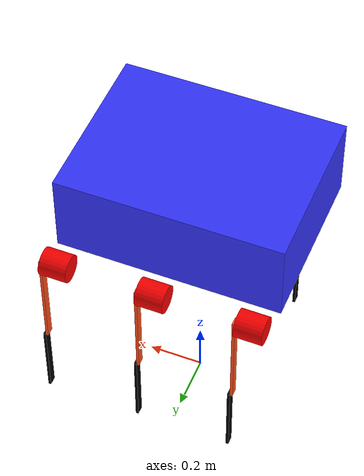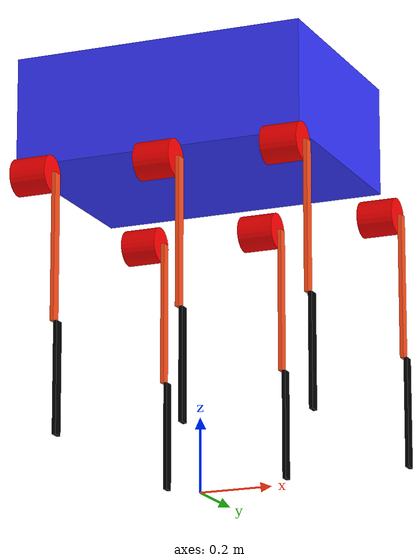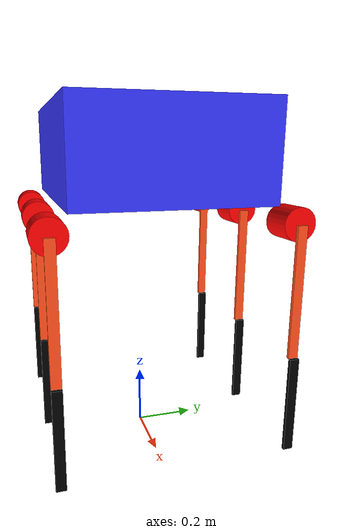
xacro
<?xml version="1.0"?>
<robot xmlns:xacro="http://www.ros.org/wiki/xacro"  name="robot">

    <!--xacro:arg name="use_ros2_control" default="true"/-->
    <xacro:arg name="sim_mode" default="false"/>
     <!-- Import Gazebo related stuff -->
    <xacro:include filename="gazebo_control.xacro"/>
     <!-- Import Leg geometry Macro -->
    <xacro:include filename="robot_leg.xacro"/>
     <!-- Import Leg control Macro -->
    <xacro:include filename="ros2_control_leg.xacro"/>
     <!-- Import ROS control -->
    <xacro:include filename="ros2_control_silver.xacro"/>
     <!-- Import Inertia Macros -->
    <xacro:include filename="inertial_macros.xacro"/>
    <!-- Import Constants -->
    <xacro:include filename="silver_constants.xacro"/>
    <!-- Import Rviz colors -->
    <xacro:include filename="colors_rviz.xacro"/>

    <!-- WORLD LINK -->

    <link name = "world"></link>

    <!-- BODY JOINT AND LINK -->

    <joint name="body_joint" type="fixed">
        <origin xyz="0.0 0.0 ${body_link_height}" rpy="0.0 0.0 0.0"/>
        <parent link="world"/>
        <child link="body_link"/>
    </joint>

    <link name="body_link">
        <visual>
            <origin xyz="0.0 0.0 0.0" rpy="0.0 0.0 0.0"/>
            <geometry>
                <box size="${body_link_x_dim} ${body_link_y_dim} ${body_link_z_dim}"/>
            </geometry>
            <material name="blue"/>
        </visual>
        <collision>
            <origin xyz="0.0 0.0 0.0" rpy="0.0 0.0 0.0"/>
            <geometry>
                <box size="${body_link_x_dim} ${body_link_y_dim} ${body_link_z_dim}"/>
            </geometry>
        </collision>
        <xacro:inertial_box mass="${body_link_mass}" x="${body_link_x_dim}" y ="${body_link_y_dim}" z="${body_link_z_dim}">
            <origin xyz="0.0 0 0.0"/>
        </xacro:inertial_box>
    </link>

    <xacro:leg suffix="0" reflect="1" Ox="0.35" Oy="0.3" Oz="-0.15"/>
    <xacro:leg suffix="1" reflect="1" Ox="0.0" Oy="0.3" Oz="-0.15"/>
    <xacro:leg suffix="2" reflect="1" Ox="-0.35" Oy="0.3" Oz="-0.15"/>
    <xacro:leg suffix="3" reflect="-1" Ox="0.35" Oy="-0.3" Oz="-0.15"/>
    <xacro:leg suffix="4" reflect="-1" Ox="0.0" Oy="-0.3" Oz="-0.15"/>
    <xacro:leg suffix="5" reflect="-1" Ox="-0.35" Oy="-0.3" Oz="-0.15"/>

</robot>

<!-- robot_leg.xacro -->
<robot xmlns:xacro="http://www.ros.org/wiki/xacro">

    <xacro:macro name="leg" params="suffix reflect Ox Oy Oz">

        <!-- COXA JOINT AND LINK-->

        <joint name="coxa_joint_${suffix}" type="revolute">
                <origin xyz="${Ox} ${Oy} ${Oz}" rpy="0.0 0.0 0.0"/>
                <parent link="body_link"/>
                <child link="coxa_link_${suffix}"/>
                <limit effort="100" velocity="100.0" lower="-3.14" upper="3.14" />
                <axis xyz="0 0 1"/>
                <dynamics damping="0.7"/>
        </joint>

        <link name="coxa_link_${suffix}">
            <visual>
                <origin xyz="${coxa_link_Ox} ${reflect*coxa_link_Oy} ${coxa_link_Oz}" rpy="0.0 ${coxa_link_Ry} 0.0"/>
                <geometry>
                    <cylinder length="${coxa_link_length}" radius="${coxa_link_radius}"/>
                </geometry>
                <material name="red"/>
            </visual>
            <collision>
                <origin xyz="${coxa_link_Ox} ${coxa_link_Oy} ${coxa_link_Oz}" rpy="0.0 ${coxa_link_Ry} 0.0"/>
                <geometry>
                    <cylinder length="${coxa_link_length}" radius="${coxa_link_radius}"/>
                </geometry>
            </collision>
            <xacro:inertial_cylinder mass="${coxa_link_mass}" length="${coxa_link_length}" radius="${coxa_link_radius}">
                <origin xyz="${coxa_link_Ox} ${coxa_link_Oy} ${coxa_link_Oz}" rpy="0.0 ${coxa_link_Ry} 0.0"/>
            </xacro:inertial_cylinder>
        </link>

        <!-- FEMUR JOINT AND LINK-->

        <joint name="femur_joint_${suffix}" type="revolute">
            <origin xyz="${femur_joint_Ox} ${reflect*femur_joint_Oy} ${femur_joint_Oz}" rpy="0.0 ${femur_joint_Ry} 0.0"/>
            <parent link="coxa_link_${suffix}"/>
            <child link="femur_link_${suffix}"/>
            <limit effort="100" velocity="100.0" lower="-3.14" upper="3.14" />
            <axis xyz="0 0 ${reflect}"/>
            <dynamics damping="0.7"/>
        </joint>

        <link name="femur_link_${suffix}">
            <visual>
                <origin xyz="${femur_link_Ox} 0.0 0.0" rpy="0.0 0.0 0.0"/>
                <geometry>
                    <box size="${femur_link_dx} ${femur_link_dy} ${femur_link_dz}"/>
                </geometry>
                <material name="orange"/>
            </visual>
            <collision>
                <origin xyz="${femur_link_Ox} 0.0 0.0" rpy="0.0 0.0 0.0"/>
                <geometry>
                    <box size="${femur_link_dx} ${femur_link_dy} ${femur_link_dz}"/>
                </geometry>
            </collision>
            <xacro:inertial_box mass="${femur_link_mass}" x="${femur_link_dx}" y="${femur_link_dy}" z='${femur_link_dz}'>
                <origin xyz="${femur_link_Ox} 0.0 0.0" rpy="0.0 0.0 0.0"/>
            </xacro:inertial_box>
        </link>

        <!-- TIBIA JOINT AND LINK -->
        <joint name="tibia_joint_${suffix}" type="revolute">
            <origin xyz="${tibia_joint_Ox} ${tibia_joint_Oy} ${tibia_joint_Oz}" rpy="0.0 0.0 0.0"/>
            <parent link="femur_link_${suffix}"/>
            <child link="tibia_link_${suffix}"/>
            <limit effort="100" velocity="100.0" lower="-3.14" upper="3.14" />
            <axis xyz="0 0 ${reflect}"/>
            <dynamics damping="0.7"/>
        </joint>

        <link name="tibia_link_${suffix}">
            <visual>
                <origin xyz="${tibia_link_Ox} 0.0 0.0" rpy="0.0 0.0 0.0"/>
                <geometry>
                    <box size="${tibia_link_dx} ${tibia_link_dy} ${tibia_link_dz}"/>
                </geometry>
                <material name="black"/>
            </visual>
            <collision>
                <origin xyz="${tibia_link_Ox} 0.0 0.0" rpy="0.0 0.0 0.0"/>
                <geometry>
                    <box size="${tibia_link_dx} ${tibia_link_dy} ${tibia_link_dz}"/>
                </geometry>
            </collision>
            <xacro:inertial_box mass="${tibia_link_mass}" x="${tibia_link_dx}" y="${tibia_link_dy}" z="${tibia_link_dz}">
                <origin xyz="${tibia_link_Ox} 0.0 0.0" rpy="0.0 0.0 0.0"/>
            </xacro:inertial_box>
        </link>

    </xacro:macro>
</robot>

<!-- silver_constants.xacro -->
<robot xmlns:xacro="http://www.ros.org/wiki/xacro" >

    <!-- Constant parameters -->
    <xacro:property name="body_link_mass" value="2.0" /> <!-- Kg -->
    <xacro:property name="body_link_height" value="1.0" />
    <xacro:property name="body_link_x_dim" value="0.8" />
    <xacro:property name="body_link_y_dim" value="0.6" />
    <xacro:property name="body_link_z_dim" value="0.3" />

    <xacro:property name="coxa_link_mass" value="0.5" /> <!-- Kg -->
    <xacro:property name="coxa_joint_Ox" value="0.0" />
    <xacro:property name="coxa_joint_Oy" value="0.0" />
    <xacro:property name="coxa_joint_Oz" value="0.0" />
    <xacro:property name="coxa_link_Ox" value="0.03" />
    <xacro:property name="coxa_link_Oy" value="0.05" />
    <xacro:property name="coxa_link_Oz" value="-0.05" />
    <xacro:property name="coxa_link_Ry" value="1.57" /> <!-- rad -->
    <xacro:property name="coxa_link_length" value="0.1" />
    <xacro:property name="coxa_link_radius" value="0.05" />

    <xacro:property name="femur_link_mass" value="0.5" /> <!-- Kg -->
    <xacro:property name="femur_joint_Ox" value="0.09" />
    <xacro:property name="femur_joint_Oy" value="0.05" />
    <xacro:property name="femur_joint_Oz" value="-0.05" />
    <xacro:property name="femur_joint_Ry" value="1.57" /> <!-- rad -->
    <xacro:property name="femur_link_Ox" value="0.2" />
    <xacro:property name="femur_link_Oy" value="0.05" />
    <xacro:property name="femur_link_Oz" value="-0.05" />
    <xacro:property name="femur_link_dx" value="0.4" />
    <xacro:property name="femur_link_dy" value="0.03" />
    <xacro:property name="femur_link_dz" value="0.01" />

    <xacro:property name="tibia_link_mass" value="0.5" /> <!-- Kg -->
    <xacro:property name="tibia_joint_Ox" value="0.4" />
    <xacro:property name="tibia_joint_Oy" value="0.0" />
    <xacro:property name="tibia_joint_Oz" value="0.01" />
    <xacro:property name="tibia_link_Ox" value="0.15" />
    <xacro:property name="tibia_link_Oy" value="0.0" />
    <xacro:property name="tibia_link_Oz" value="0.0" />
    <xacro:property name="tibia_link_dx" value="0.3" />
    <xacro:property name="tibia_link_dy" value="0.03" />
    <xacro:property name="tibia_link_dz" value="0.01" />

    <xacro:property name="foot_link_mass" value="0.1" /> <!-- Kg -->
    <xacro:property name="foot_joint_Ox" value="0.3" />
    <xacro:property name="foot_joint_Oy" value="0.0" />
    <xacro:property name="foot_joint_Oz" value="0.0" />
    <xacro:property name="foot_joint_Rz" value="-0.785" /> <!-- rad -->
    <xacro:property name="foot_link_Ox" value="0.01" />
    <xacro:property name="foot_link_Oy" value="0.0" />
    <xacro:property name="foot_link_Oz" value="0.0" />
    <xacro:property name="foot_link_dx" value="0.05" />
    <xacro:property name="foot_link_dy" value="0.01" />
    <xacro:property name="foot_link_dz" value="0.01" />

    <xacro:property name="coxa_offset_0" value="-0.23" /> <!-- rad -->
    <xacro:property name="femur_offset_0" value="-0.10" /> <!-- rad -->
    <xacro:property name="tibia_offset_0" value="1.85" /> <!-- rad -->
    <xacro:property name="coxa_offset_1" value="0.0" /> <!-- rad -->
    <xacro:property name="femur_offset_1" value="0.0" /> <!-- rad -->
    <xacro:property name="tibia_offset_1" value="0.0" /> <!-- rad -->
    <xacro:property name="coxa_offset_2" value="0.0" /> <!-- rad -->
    <xacro:property name="femur_offset_2" value="0.0" /> <!-- rad -->
    <xacro:property name="tibia_offset_2" value="0.0" /> <!-- rad -->
    <xacro:property name="coxa_offset_3" value="0.0" /> <!-- rad -->
    <xacro:property name="femur_offset_3" value="0.0" /> <!-- rad -->
    <xacro:property name="tibia_offset_3" value="0.0" /> <!-- rad -->
    <xacro:property name="coxa_offset_4" value="0.0" /> <!-- rad -->
    <xacro:property name="femur_offset_4" value="0.0" /> <!-- rad -->
    <xacro:property name="tibia_offset_4" value="0.0" /> <!-- rad -->
    <xacro:property name="coxa_offset_5" value="0.0" /> <!-- rad -->
    <xacro:property name="femur_offset_5" value="0.0" /> <!-- rad -->
    <xacro:property name="tibia_offset_5" value="0.0" /> <!-- rad -->

    <xacro:property name="coxa_reduction_0" value="1.0" /> <!-- rad -->
    <xacro:property name="femur_reduction_0" value="-1.0" /> <!-- rad -->
    <xacro:property name="tibia_reduction_0" value="1.0" /> <!-- rad -->
    <xacro:property name="coxa_reduction_1" value="1.0" /> <!-- rad -->
    <xacro:property name="femur_reduction_1" value="1.0" /> <!-- rad -->
    <xacro:property name="tibia_reduction_1" value="1.0" /> <!-- rad -->
    <xacro:property name="coxa_reduction_2" value="1.0" /> <!-- rad -->
    <xacro:property name="femur_reduction_2" value="1.0" /> <!-- rad -->
    <xacro:property name="tibia_reduction_2" value="1.0" /> <!-- rad -->
    <xacro:property name="coxa_reduction_3" value="1.0" /> <!-- rad -->
    <xacro:property name="femur_reduction_3" value="1.0" /> <!-- rad -->
    <xacro:property name="tibia_reduction_3" value="1.0" /> <!-- rad -->
    <xacro:property name="coxa_reduction_4" value="1.0" /> <!-- rad -->
    <xacro:property name="femur_reduction_4" value="1.0" /> <!-- rad -->
    <xacro:property name="tibia_reduction_4" value="1.0" /> <!-- rad -->
    <xacro:property name="coxa_reduction_5" value="1.0" /> <!-- rad -->
    <xacro:property name="femur_reduction_5" value="1.0" /> <!-- rad -->
    <xacro:property name="tibia_reduction_5" value="1.0" /> <!-- rad -->

</robot>

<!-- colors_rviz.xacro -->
<robot xmlns:xacro="http://www.ros.org/wiki/xacro" >

    <!-- Define colors for RVIZ -->
    <material name="white">
        <color rgba = "1 1 1 1" />
    </material>

    <material name="orange">
        <color rgba = "1 0.3 0.1 1" />
    </material>

    <material name="blue">
        <color rgba = "0.2 0.2 1 1" />
    </material>

    <material name="black">
        <color rgba = "0 0 0 1" />
    </material>

    <material name="red">
        <color rgba = "1 0 0 1" />
    </material>

</robot>
